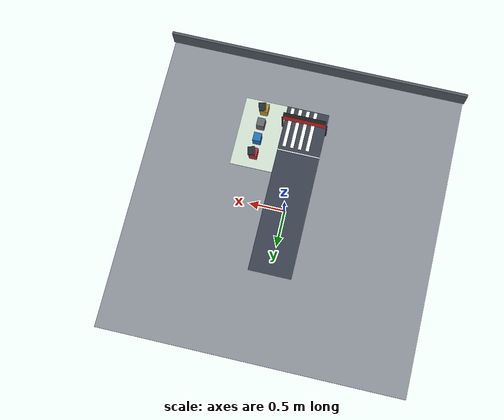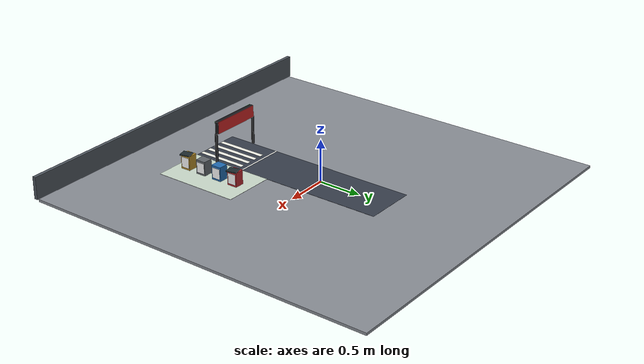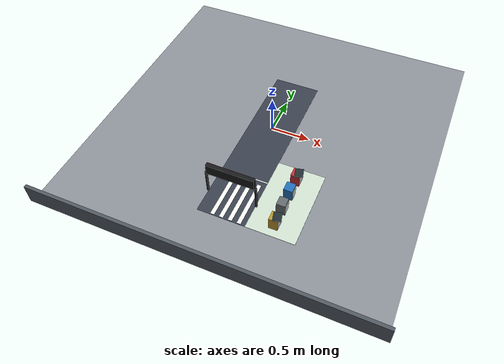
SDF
<sdf version="1.6">
 <world name="sq_community_4p2">
  <include><uri>model://sun</uri></include>
  <model name="sq4_floor">
   <static>true</static>
   <link name="floor">
    <visual name="floor_vis">
     <pose>0.0000 0.0000 -0.0150 0 0 0.00000</pose>
     <geometry><box><size>4.2000 4.2000 0.0300</size></box></geometry>
     <material>
      <ambient>0.5300 0.5500 0.5800 1.0000</ambient>
      <diffuse>0.5300 0.5500 0.5800 1.0000</diffuse>
     </material>
    </visual>
    <collision name="floor_col">
     <pose>0.0000 0.0000 -0.0150 0 0 0.00000</pose>
     <geometry><box><size>4.2000 4.2000 0.0300</size></box></geometry>
    </collision>
   </link>
  </model>
  <model name="sq4_road_central">
   <static>true</static>
   <pose>0.0000 -0.3000 0.0000 0 0 0.00000</pose>
   <link name="surface">
    <visual name="surface_vis">
     <pose>0.0000 0.0000 0.0015 0 0 0.00000</pose>
     <geometry><box><size>0.6000 2.4000 0.0030</size></box></geometry>
     <material>
      <ambient>0.2100 0.2400 0.2900 1.0000</ambient>
      <diffuse>0.2100 0.2400 0.2900 1.0000</diffuse>
     </material>
    </visual>
   </link>
  </model>
  <model name="sq4_zone_bins">
   <static>true</static>
   <pose>0.6000 -1.0000 0.0000 0 0 0.00000</pose>
   <link name="surface">
    <visual name="surface_vis">
     <pose>0.0000 0.0000 0.0018 0 0 0.00000</pose>
     <geometry><box><size>0.6000 1.0000 0.0035</size></box></geometry>
     <material>
      <ambient>0.7900 0.8500 0.7900 1.0000</ambient>
      <diffuse>0.7900 0.8500 0.7900 1.0000</diffuse>
     </material>
    </visual>
   </link>
  </model>
  <model name="sq4_boundary_south">
   <static>true</static>
   <pose>0.0000 -2.1200 0.0000 0 0 0.00000</pose>
   <link name="wall">
    <visual name="wall_vis">
     <pose>0.0000 0.0000 0.1300 0 0 0.00000</pose>
     <geometry><box><size>4.2400 0.0400 0.2600</size></box></geometry>
     <material>
      <ambient>0.3000 0.3300 0.3600 1.0000</ambient>
      <diffuse>0.3000 0.3300 0.3600 1.0000</diffuse>
     </material>
    </visual>
    <collision name="wall_col">
     <pose>0.0000 0.0000 0.1300 0 0 0.00000</pose>
     <geometry><box><size>4.2400 0.0400 0.2600</size></box></geometry>
    </collision>
   </link>
  </model>
  <model name="sq4_crossing_lower_1">
   <static>true</static>
   <pose>-0.1100 -1.2000 0.0000 0 0 0.00000</pose>
   <link name="surface">
    <visual name="surface_vis">
     <pose>0.0000 0.0000 0.0025 0 0 0.00000</pose>
     <geometry><box><size>0.0480 0.5800 0.0050</size></box></geometry>
     <material>
      <ambient>0.9600 0.9600 0.9200 1.0000</ambient>
      <diffuse>0.9600 0.9600 0.9200 1.0000</diffuse>
     </material>
    </visual>
   </link>
  </model>
  <model name="sq4_crossing_lower_2">
   <static>true</static>
   <pose>0.0000 -1.2000 0.0000 0 0 0.00000</pose>
   <link name="surface">
    <visual name="surface_vis">
     <pose>0.0000 0.0000 0.0025 0 0 0.00000</pose>
     <geometry><box><size>0.0480 0.5800 0.0050</size></box></geometry>
     <material>
      <ambient>0.9600 0.9600 0.9200 1.0000</ambient>
      <diffuse>0.9600 0.9600 0.9200 1.0000</diffuse>
     </material>
    </visual>
   </link>
  </model>
  <model name="sq4_crossing_lower_3">
   <static>true</static>
   <pose>0.1100 -1.2000 0.0000 0 0 0.00000</pose>
   <link name="surface">
    <visual name="surface_vis">
     <pose>0.0000 0.0000 0.0025 0 0 0.00000</pose>
     <geometry><box><size>0.0480 0.5800 0.0050</size></box></geometry>
     <material>
      <ambient>0.9600 0.9600 0.9200 1.0000</ambient>
      <diffuse>0.9600 0.9600 0.9200 1.0000</diffuse>
     </material>
    </visual>
   </link>
  </model>
  <model name="sq4_crossing_lower_4">
   <static>true</static>
   <pose>0.2200 -1.2000 0.0000 0 0 0.00000</pose>
   <link name="surface">
    <visual name="surface_vis">
     <pose>0.0000 0.0000 0.0025 0 0 0.00000</pose>
     <geometry><box><size>0.0480 0.5800 0.0050</size></box></geometry>
     <material>
      <ambient>0.9600 0.9600 0.9200 1.0000</ambient>
      <diffuse>0.9600 0.9600 0.9200 1.0000</diffuse>
     </material>
    </visual>
   </link>
  </model>
  <model name="sq4_stop_lower">
   <static>true</static>
   <pose>0.0000 -0.8500 0.0000 0 0 0.00000</pose>
   <link name="surface">
    <visual name="surface_vis">
     <pose>0.0000 0.0000 0.0030 0 0 0.00000</pose>
     <geometry><box><size>0.6000 0.0160 0.0060</size></box></geometry>
     <material>
      <ambient>0.9800 0.9800 0.9600 1.0000</ambient>
      <diffuse>0.9800 0.9800 0.9600 1.0000</diffuse>
     </material>
    </visual>
   </link>
  </model>
  <model name="sq4_bin_hazard">
   <static>true</static>
   <pose>0.6000 -0.6900 0.0000 0 0 0.00000</pose>
   <link name="body">
    <visual name="body_vis">
     <pose>0.0000 0.0000 0.0850 0 0 0.00000</pose>
     <geometry><box><size>0.1100 0.1200 0.1700</size></box></geometry>
     <material>
      <ambient>0.7200 0.1600 0.1800 1.0000</ambient>
      <diffuse>0.7200 0.1600 0.1800 1.0000</diffuse>
     </material>
    </visual>
    <collision name="body_col">
     <pose>0.0000 0.0000 0.0850 0 0 0.00000</pose>
     <geometry><box><size>0.1100 0.1200 0.1700</size></box></geometry>
    </collision>
   </link>
   <link name="front">
    <visual name="front_vis">
     <pose>0.0570 0.0000 0.0850 0 0 0.00000</pose>
     <geometry><box><size>0.0030 0.1000 0.1200</size></box></geometry>
     <material>
      <script>
       <uri>model://sq_textures/materials/scripts</uri>
       <uri>model://sq_textures/materials/textures</uri>
       <name>SQ_bin_hazard</name>
      </script>
      <ambient>1 1 1 1</ambient>
      <diffuse>1 1 1 1</diffuse>
     </material>
    </visual>
   </link>
   <link name="open_lid">
    <visual name="open_lid_vis">
     <pose>0.0300 0.0000 0.1800 0 0 0.25000</pose>
     <geometry><box><size>0.1000 0.1200 0.0120</size></box></geometry>
     <material>
      <ambient>0.1200 0.1700 0.1800 1.0000</ambient>
      <diffuse>0.1200 0.1700 0.1800 1.0000</diffuse>
     </material>
    </visual>
   </link>
  </model>
  <model name="sq4_bin_recycle">
   <static>true</static>
   <pose>0.6000 -0.9100 0.0000 0 0 0.00000</pose>
   <link name="body">
    <visual name="body_vis">
     <pose>0.0000 0.0000 0.0850 0 0 0.00000</pose>
     <geometry><box><size>0.1100 0.1200 0.1700</size></box></geometry>
     <material>
      <ambient>0.1300 0.4200 0.6900 1.0000</ambient>
      <diffuse>0.1300 0.4200 0.6900 1.0000</diffuse>
     </material>
    </visual>
    <collision name="body_col">
     <pose>0.0000 0.0000 0.0850 0 0 0.00000</pose>
     <geometry><box><size>0.1100 0.1200 0.1700</size></box></geometry>
    </collision>
   </link>
   <link name="front">
    <visual name="front_vis">
     <pose>0.0570 0.0000 0.0850 0 0 0.00000</pose>
     <geometry><box><size>0.0030 0.1000 0.1200</size></box></geometry>
     <material>
      <script>
       <uri>model://sq_textures/materials/scripts</uri>
       <uri>model://sq_textures/materials/textures</uri>
       <name>SQ_bin_recycle</name>
      </script>
      <ambient>1 1 1 1</ambient>
      <diffuse>1 1 1 1</diffuse>
     </material>
    </visual>
   </link>
  </model>
  <model name="sq4_bin_other">
   <static>true</static>
   <pose>0.6000 -1.1300 0.0000 0 0 0.00000</pose>
   <link name="body">
    <visual name="body_vis">
     <pose>0.0000 0.0000 0.0850 0 0 0.00000</pose>
     <geometry><box><size>0.1100 0.1200 0.1700</size></box></geometry>
     <material>
      <ambient>0.3800 0.4000 0.4200 1.0000</ambient>
      <diffuse>0.3800 0.4000 0.4200 1.0000</diffuse>
     </material>
    </visual>
    <collision name="body_col">
     <pose>0.0000 0.0000 0.0850 0 0 0.00000</pose>
     <geometry><box><size>0.1100 0.1200 0.1700</size></box></geometry>
    </collision>
   </link>
   <link name="front">
    <visual name="front_vis">
     <pose>0.0570 0.0000 0.0850 0 0 0.00000</pose>
     <geometry><box><size>0.0030 0.1000 0.1200</size></box></geometry>
     <material>
      <script>
       <uri>model://sq_textures/materials/scripts</uri>
       <uri>model://sq_textures/materials/textures</uri>
       <name>SQ_bin_other</name>
      </script>
      <ambient>1 1 1 1</ambient>
      <diffuse>1 1 1 1</diffuse>
     </material>
    </visual>
   </link>
  </model>
  <model name="sq4_bin_kitchen">
   <static>true</static>
   <pose>0.6000 -1.3500 0.0000 0 0 0.00000</pose>
   <link name="body">
    <visual name="body_vis">
     <pose>0.0000 0.0000 0.0850 0 0 0.00000</pose>
     <geometry><box><size>0.1100 0.1200 0.1700</size></box></geometry>
     <material>
      <ambient>0.7100 0.5500 0.1600 1.0000</ambient>
      <diffuse>0.7100 0.5500 0.1600 1.0000</diffuse>
     </material>
    </visual>
    <collision name="body_col">
     <pose>0.0000 0.0000 0.0850 0 0 0.00000</pose>
     <geometry><box><size>0.1100 0.1200 0.1700</size></box></geometry>
    </collision>
   </link>
   <link name="front">
    <visual name="front_vis">
     <pose>0.0570 0.0000 0.0850 0 0 0.00000</pose>
     <geometry><box><size>0.0030 0.1000 0.1200</size></box></geometry>
     <material>
      <script>
       <uri>model://sq_textures/materials/scripts</uri>
       <uri>model://sq_textures/materials/textures</uri>
       <name>SQ_bin_kitchen</name>
      </script>
      <ambient>1 1 1 1</ambient>
      <diffuse>1 1 1 1</diffuse>
     </material>
    </visual>
   </link>
   <link name="open_lid">
    <visual name="open_lid_vis">
     <pose>0.0300 0.0000 0.1800 0 0 0.25000</pose>
     <geometry><box><size>0.1000 0.1200 0.0120</size></box></geometry>
     <material>
      <ambient>0.1200 0.1700 0.1800 1.0000</ambient>
      <diffuse>0.1200 0.1700 0.1800 1.0000</diffuse>
     </material>
    </visual>
   </link>
  </model>
  <include>
   <name>sq4_tl_lower</name>
   <pose>0.0000 -1.2000 0.0000 0 0 1.57080</pose>
   <uri>model://sq_traffic_light_4p2</uri>
  </include>
 </world>
</sdf>
